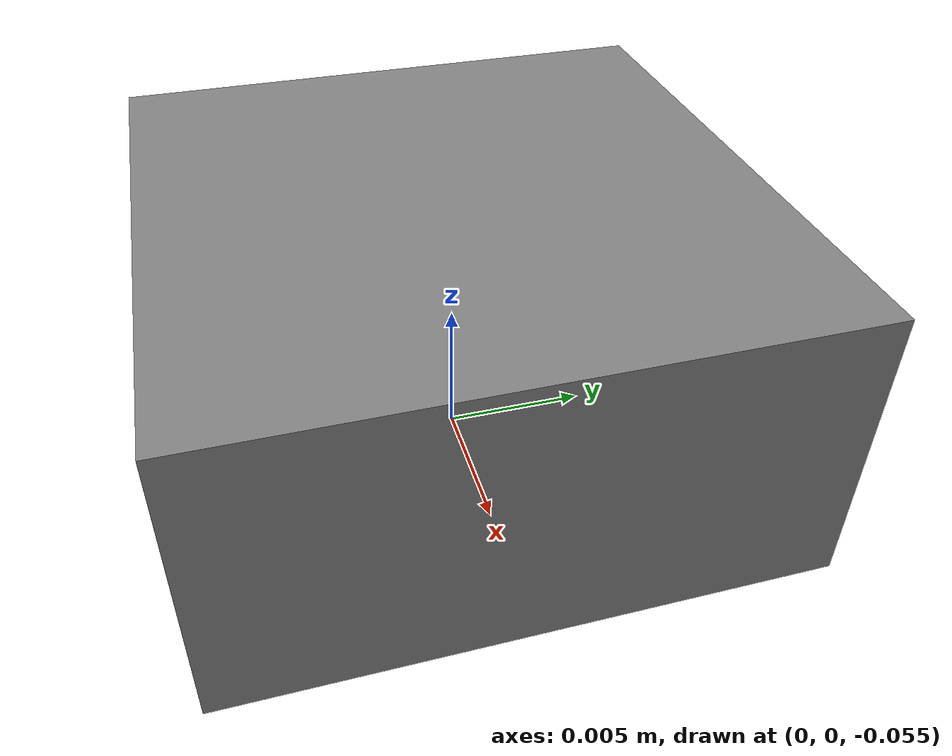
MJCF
<mujoco model="key_0">
    <worldbody>
        <body name="key_0" pos="0.0 0.0 -0.05">
            <inertial pos="0.0 -0.0774 0.0" mass=".01" diaginertia="0.001 0.001 0.001"/>
            <joint name="key_joint_0" pos="0.0 0.0 0.0" axis="0 0 1" type="slide" springref=".5" limited="true" stiffness="0.5" range="-0.024 0.0" damping="1"/>
            <geom pos="0.0 -0.00 0.0" size="0.01 0.01 0.005" type="box"/>
        </body>
    </worldbody>
</mujoco>
